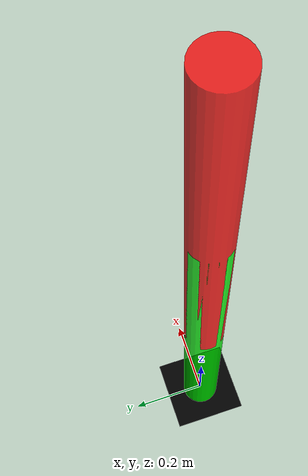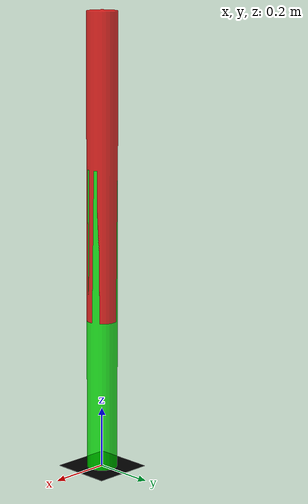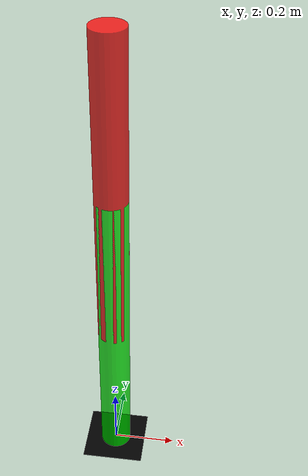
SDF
<?xml version="1.0"?>
<sdf version="1.7">
  <model name="acrobot">
    <link name="base_link">
      <collision name="base_link_collision">
        <geometry>
          <box>
            <size>0.2 0.2 0.001</size>
          </box>
        </geometry>
      </collision>
      <visual name="base_link_visual">
        <geometry>
          <box>
            <size>0.2 0.2 0.001</size>
          </box>
        </geometry>
        <material>
          <diffuse>0 0 0 1</diffuse>
        </material>
      </visual>
    </link>
    <joint name="base_weld" type="fixed">
      <child>base_link</child>
      <parent>world</parent>
    </joint>
    <link name="upper_link">
      <pose>0 0 0.5 0 0 0</pose>
      <inertial>
        <pose>0 0 0.5 0 0 0</pose>
        <mass>1</mass>
        <inertia>
          <ixx>1</ixx>
          <ixy>0</ixy>
          <ixz>0</ixz>
          <iyy>0.083</iyy>
          <iyz>0</iyz>
          <izz>1</izz>
        </inertia>
      </inertial>
      <collision name="upper_link_collision">
        <pose>0 0 0.5 0 0 0</pose>
        <geometry>
          <cylinder>
            <length>1</length>
            <radius>0.05</radius>
          </cylinder>
        </geometry>
      </collision>
      <visual name="upper_link_visual">
        <geometry>
          <cylinder>
            <length>1</length>
            <radius>0.05</radius>
          </cylinder>
        </geometry>
        <material>
          <diffuse>0 1 0 0.8</diffuse>
        </material>
      </visual>
    </link>
    <joint name="shoulder" type="revolute">
      <child>upper_link</child>
      <parent>base_link</parent>
      <axis>
        <xyz expressed_in="__model__">0 1 0</xyz>
        <limit>
          <lower>-2.96705972839</lower>
          <upper>2.96705972839</upper>
          <effort>320</effort>
          <velocity>1.4835298641951802</velocity>
          <drake:acceleration>8.57</drake:acceleration>
        </limit>
        <dynamics>
          <damping>0.1</damping>
          <friction>0</friction>
          <spring_reference>0</spring_reference>
          <spring_stiffness>0</spring_stiffness>
        </dynamics>
      </axis>
    </joint>
    <link name="lower_link">
      <pose>0 0 1 0 0 0</pose>
      <inertial>
        <pose>0 0 0.5 0 0 0</pose>
        <mass>1</mass>
        <inertia>
          <ixx>1</ixx>
          <ixy>0</ixy>
          <ixz>0</ixz>
          <iyy>0.33</iyy>
          <iyz>0</iyz>
          <izz>1</izz>
        </inertia>
      </inertial>
      <collision name="lower_link_collision">
        <pose>0 0 0.5 0 0 0</pose>
        <geometry>
          <cylinder>
            <length>1</length>
            <radius>0.05</radius>
          </cylinder>
        </geometry>
      </collision>
      <visual name="lower_link_visual">
        <geometry>
          <cylinder>
            <length>1</length>
            <radius>0.05</radius>
          </cylinder>
        </geometry>
        <material>
          <diffuse>1 0 0 0.8</diffuse>
        </material>
      </visual>
    </link>
    <joint name="elbow" type="revolute">
      <child>lower_link</child>
      <parent>upper_link</parent>
      <axis>
        <xyz expressed_in="__model__">0 1 0</xyz>
        <limit>
          <lower>-2.96705972839</lower>
          <upper>2.96705972839</upper>
          <effort>320</effort>
          <velocity>1.4835298641951802</velocity>
          <drake:acceleration>8.57</drake:acceleration>
        </limit>
        <dynamics>
          <damping>0.1</damping>
          <friction>0</friction>
          <spring_reference>0</spring_reference>
          <spring_stiffness>0</spring_stiffness>
        </dynamics>
      </axis>
    </joint>
  </model>
</sdf>
